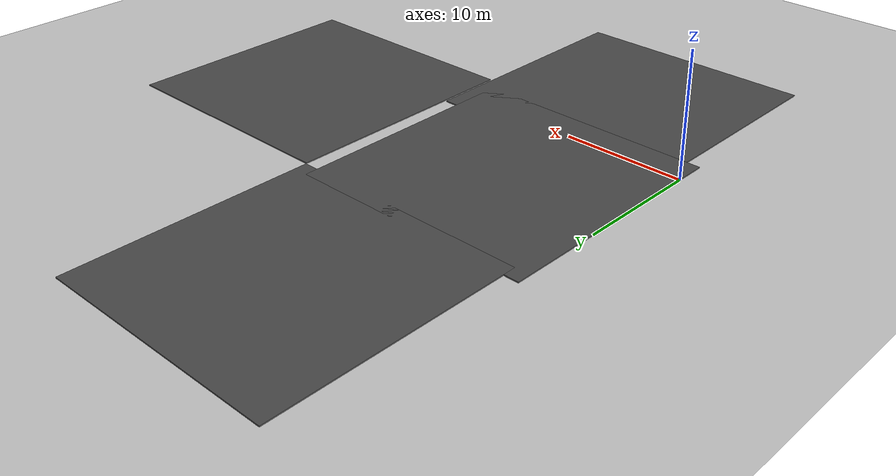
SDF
<sdf version="1.7">
 <world name="default">
  <model name="ground_plane">
   <static>1</static>
   <link name="link">
    <collision name="collision">
     <geometry><plane><normal>0 0 1</normal><size>100 100</size></plane></geometry>
     <surface><friction><ode><mu>100</mu><mu2>50</mu2></ode></friction></surface>
    </collision>
    <visual name="visual">
     <cast_shadows>0</cast_shadows>
     <geometry><plane><normal>0 0 1</normal><size>100 100</size></plane></geometry>
     <material>
      <script><uri>file://media/materials/scripts/gazebo.material</uri><name>Gazebo/Grey</name></script>
     </material>
    </visual>
   </link>
  </model>
  <model name="asphalt_plane">
   <static>1</static>
   <link name="link">
    <collision name="collision"><geometry><box><size>20 20 0.1</size></box></geometry></collision>
    <visual name="visual">
     <cast_shadows>0</cast_shadows>
     <geometry><box><size>20 20 0.1</size></box></geometry>
     <material>
      <script>
       <uri>model://asphalt_plane/materials/scripts</uri>
       <uri>model://asphalt_plane/materials/textures</uri>
       <name>vrc/asphalt</name>
      </script>
     </material>
    </visual>
   </link>
   <pose>9.99412 7.45899 0 0 -0 0</pose>
  </model>
  <model name="asphalt_plane_clone_0">
   <static>1</static>
   <link name="link">
    <collision name="collision"><geometry><box><size>20 20 0.1</size></box></geometry></collision>
    <visual name="visual">
     <cast_shadows>0</cast_shadows>
     <geometry><box><size>20 20 0.1</size></box></geometry>
     <material>
      <script>
       <uri>model://asphalt_plane/materials/scripts</uri>
       <uri>model://asphalt_plane/materials/textures</uri>
       <name>vrc/asphalt</name>
      </script>
     </material>
    </visual>
   </link>
   <pose>11.0922 -8.18214 0 0 -0 0</pose>
  </model>
  <model name="asphalt_plane_clone_1">
   <static>1</static>
   <link name="link">
    <collision name="collision"><geometry><box><size>20 20 0.1</size></box></geometry></collision>
    <visual name="visual">
     <cast_shadows>0</cast_shadows>
     <geometry><box><size>20 20 0.1</size></box></geometry>
     <material>
      <script>
       <uri>model://asphalt_plane/materials/scripts</uri>
       <uri>model://asphalt_plane/materials/textures</uri>
       <name>vrc/asphalt</name>
      </script>
     </material>
    </visual>
   </link>
   <pose>11.2066 26.3946 0 0 -0 0</pose>
  </model>
  <model name="asphalt_plane_clone_2">
   <static>1</static>
   <link name="link">
    <collision name="collision"><geometry><box><size>20 20 0.1</size></box></geometry></collision>
    <visual name="visual">
     <cast_shadows>0</cast_shadows>
     <geometry><box><size>20 20 0.1</size></box></geometry>
     <material>
      <script>
       <uri>model://asphalt_plane/materials/scripts</uri>
       <uri>model://asphalt_plane/materials/textures</uri>
       <name>vrc/asphalt</name>
      </script>
     </material>
    </visual>
   </link>
   <pose>31.2905 6.30185 0 0 -0 0</pose>
  </model>
 </world>
</sdf>
